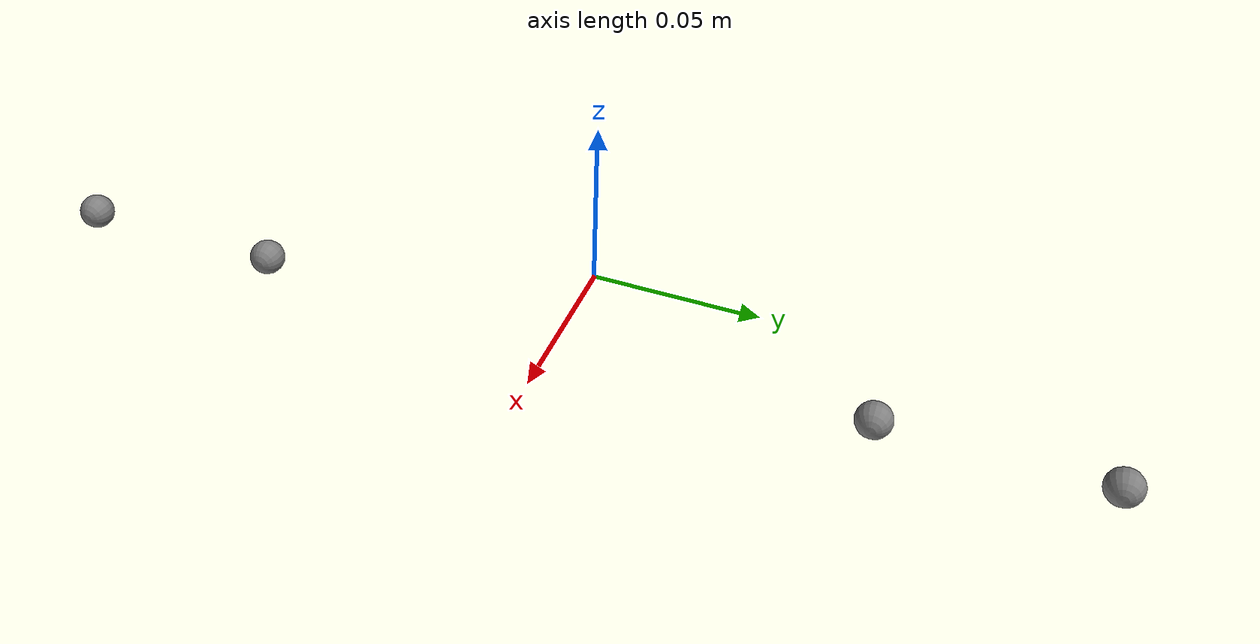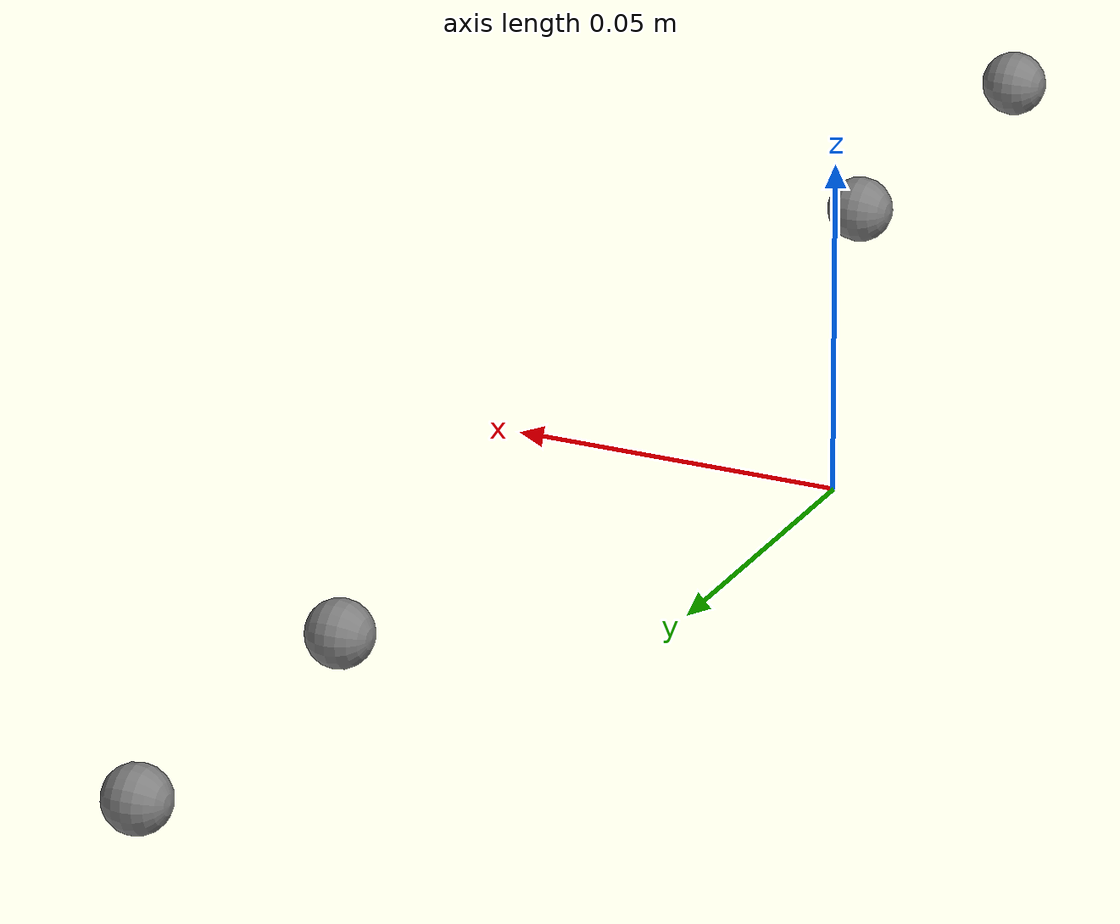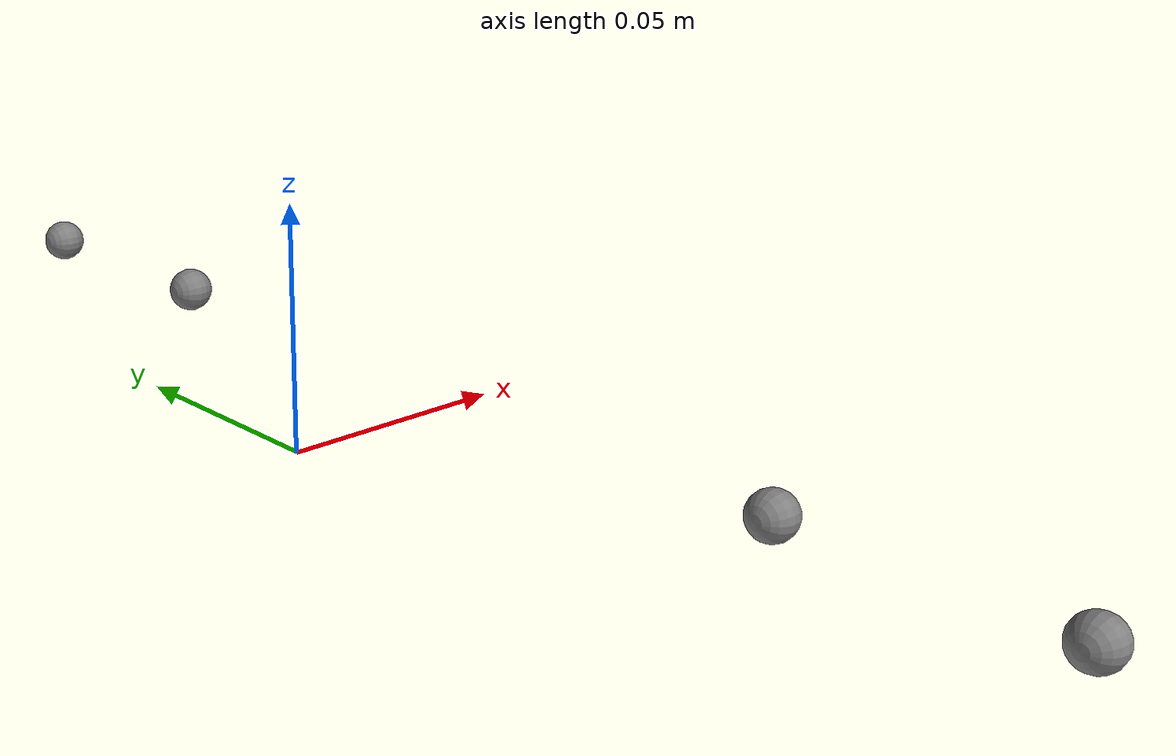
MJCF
<mujoco model="unitree_g1_29dof">
  <compiler angle="radian"/>
  <default>
    <default class="collision"/>
  </default>
  <worldbody>
    <body name="pelvis" pos="0 0 0.793" quat="1 0 0 0">
      <inertial pos="0 0 -0.07605" mass="3.813" fullinertia="0.0105489983 0.0093089 0.00791840168 0 2.09999645e-06 0"/>
      <freejoint/>
      <body name="left_hip_pitch_link" pos="0 0.064452 -0.1027" quat="0.707106781 -0.707106781 0 0">
        <inertial pos="0.002741 0.02606 0.047791" mass="1.35" fullinertia="0.00181100487 0.00128120214 0.00141930299 3.44002e-05 3.68000839e-05 -0.000171000371"/>
        <joint name="left_hip_pitch_joint" axis="0 0 1" range="-2.5307 2.8798"/>
        <body name="left_hip_roll_link" pos="0 0.030465 0.052" quat="0.541758629 0.541758629 0.454420057 0.454420057">
          <inertial pos="0.087934 -0.001045 0.029812" mass="1.52" fullinertia="0.0016595016 0.00241229823 0.00237730017 -1.84000462e-05 0.00039079999 -3.80016636e-06"/>
          <joint name="left_hip_roll_joint" axis="0 0 1" range="-0.5236 2.9671"/>
          <body name="left_hip_yaw_link" pos="0.12412 0 0.025001" quat="0.707106781 0 -0.707106781 0">
            <inertial pos="-0.057709 -0.010981 -0.15078" mass="1.702" fullinertia="0.00577739711 0.0076124014 0.00314900149 -0.000541101155 -0.00239480377 -0.00070720225"/>
            <joint name="left_hip_yaw_joint" axis="0 0 1" range="-2.7576 2.7576"/>
            <body name="left_knee_link" pos="-0.078273 0.0021489 -0.17734" quat="0.704404704 -0.704404704 0.0617576968 0.0617576968">
              <inertial pos="0.005457 0.12074 0.003964" mass="1.932" fullinertia="0.0113289923 0.00151679526 0.0112769924 4.48974521e-05 4.81665062e-05 0.000714600249"/>
              <joint name="left_knee_joint" axis="0 0 1" range="-0.087267 2.8798"/>
              <body name="left_ankle_pitch_link" pos="0 0.30001 -9.4445e-05" quat="1 0 0 0">
                <inertial pos="-0.007269 -0.011137 1.73472348e-18" mass="0.074" fullinertia="8.39999715e-06 1.26000028e-05 1.89e-05 2.89999453e-06 -5.33097347e-22 5.29511238e-22"/>
                <joint name="left_ankle_pitch_joint" axis="0 0 1" range="-0.87267 0.5236"/>
                <body name="left_ankle_roll_link" pos="0 0.017558 -3.46944695e-18" quat="0.5 0.5 0.5 0.5">
                  <inertial pos="0.016425 0 0.026505" mass="0.608" fullinertia="0.00166670122 0.00161610011 0.000223099671 1.00002017e-07 -8.91010117e-05 1.99999908e-07"/>
                  <joint name="left_ankle_roll_joint" axis="0 0 1" range="-0.2618 0.2618"/>
                  <geom class="collision" fromto="0.03 -0.03 -0.05 0.03 -0.03 0.12" size="0.005"/>
                  <geom class="collision" fromto="0.03 0.03 -0.05 0.03 0.03 0.12" size="0.005"/>
                </body>
              </body>
            </body>
          </body>
        </body>
      </body>
      <body name="right_hip_pitch_link" pos="0 -0.064452 -0.1027" quat="0.707106781 -0.707106781 0 0">
        <inertial pos="0.002741 0.02606 -0.047791" mass="1.35" fullinertia="0.00181100487 0.00128120214 0.00141930299 3.44002e-05 -3.68000839e-05 0.000171000371"/>
        <joint name="right_hip_pitch_joint" axis="0 0 1" range="-2.5307 2.8798"/>
        <body name="right_hip_roll_link" pos="0 0.030465 -0.052" quat="0.541758629 0.541758629 0.454420057 0.454420057">
          <inertial pos="0.087934 0.001045 0.029812" mass="1.52" fullinertia="0.0016595016 0.00241229823 0.00237730017 1.84000462e-05 0.00039079999 3.80016636e-06"/>
          <joint name="right_hip_roll_joint" axis="0 0 1" range="-2.9671 0.5236"/>
          <body name="right_hip_yaw_link" pos="0.12412 0 0.025001" quat="0.707106781 0 -0.707106781 0">
            <inertial pos="-0.057709 0.010981 -0.15078" mass="1.702" fullinertia="0.00577739711 0.0076124014 0.00314900149 0.000541101155 -0.00239480377 0.00070720225"/>
            <joint name="right_hip_yaw_joint" axis="0 0 1" range="-2.7576 2.7576"/>
            <body name="right_knee_link" pos="-0.078273 -0.0021489 -0.17734" quat="0.704404704 -0.704404704 0.0617576968 0.0617576968">
              <inertial pos="0.005457 0.12074 -0.003964" mass="1.932" fullinertia="0.0113290107 0.00151679887 0.0112770104 -4.48973458e-05 -4.82389719e-05 -0.000714601046"/>
              <joint name="right_knee_joint" axis="0 0 1" range="-0.087267 2.8798"/>
              <body name="right_ankle_pitch_link" pos="0 0.30001 9.4445e-05" quat="1 0 0 0">
                <inertial pos="-0.007269 -0.011137 1.73472348e-18" mass="0.074" fullinertia="8.39999715e-06 1.26000028e-05 1.89e-05 2.89999453e-06 -5.33097347e-22 5.29511238e-22"/>
                <joint name="right_ankle_pitch_joint" axis="0 0 1" range="-0.87267 0.5236"/>
                <body name="right_ankle_roll_link" pos="0 0.017558 -3.46944695e-18" quat="0.5 0.5 0.5 0.5">
                  <inertial pos="0.016425 0 0.026505" mass="0.608" fullinertia="0.00166670122 0.00161610011 0.000223099671 -1.00002017e-07 -8.91010117e-05 -1.99999908e-07"/>
                  <joint name="right_ankle_roll_joint" axis="0 0 1" range="-0.2618 0.2618"/>
                  <geom class="collision" fromto="0.03 -0.03 -0.05 0.03 -0.03 0.12" size="0.005"/>
                  <geom class="collision" fromto="0.03 0.03 -0.05 0.03 0.03 0.12" size="0.005"/>
                </body>
              </body>
            </body>
          </body>
        </body>
      </body>
      <body name="waist_yaw_link" pos="0 0 0" quat="1 0 0 0">
        <inertial pos="0.003494 0.000233 0.018034" mass="0.214" fullinertia="0.000106729754 0.000104219847 0.000162500399 2.70281413e-06 -7.63111886e-06 -2.00997774e-07"/>
        <joint name="waist_yaw_joint" axis="0 0 1" range="-2.618 2.618"/>
        <body name="waist_roll_link" pos="-0.0039635 0 0.044" quat="0.707106781 0 0.707106781 0">
          <inertial pos="0 2.3e-05 0" mass="0.086" fullinertia="8.245e-06 6.339e-06 7.079e-06 0 -1.83072781e-22 0"/>
          <joint name="waist_roll_joint" axis="0 0 1" range="-0.52 0.52"/>
          <body name="torso_link" pos="0 0 0" quat="0.5 -0.5 -0.5 -0.5">
            <inertial pos="0.00203158 -0.184568 0.000339683" mass="7.818" fullinertia="0.121698443 0.0275219757 0.109825081 0.00374228948 3.11092566e-05 1.55074339e-05"/>
            <joint name="waist_pitch_joint" axis="0 0 1" range="-0.52 0.52"/>
            <body name="left_shoulder_pitch_link" pos="0.0039563 -0.24778 0.10022" quat="0.99026414 0.13920102 9.86868139e-05 1.3872202e-05">
              <inertial pos="0 0.011628 0.035892" mass="0.718" fullinertia="0.000429099685 0.000423000059 0.000453000256 -6.39978351e-06 -9.20001783e-06 -2.26001111e-05"/>
              <joint name="left_shoulder_pitch_joint" axis="0 0 1" range="-3.0892 2.6704"/>
              <body name="left_shoulder_roll_link" pos="0 0.013831 0.038" quat="0.564720125 0.425548094 0.564720125 0.425548094">
                <inertial pos="0.063243 0.00727 -0.000227" mass="0.643" fullinertia="0.000389399553 0.000691199832 0.000617699615 5.30032372e-06 -8.69999998e-06 -1.00008224e-06"/>
                <joint name="left_shoulder_roll_joint" axis="0 0 1" range="-1.5882 2.2515"/>
                <body name="left_shoulder_yaw_link" pos="0.1032 0.00624 -2.08166817e-17" quat="0.707106781 0 -0.707106781 0">
                  <inertial pos="0.010773 -0.002949 -0.072009" mass="0.734" fullinertia="0.000998803887 0.00106049671 0.000435400401 7.89971003e-06 0.000141200796 -2.85999284e-05"/>
                  <joint name="left_shoulder_yaw_joint" axis="0 0 1" range="-2.618 2.618"/>
                  <body name="left_elbow_link" pos="0.015783 0 -0.080518" quat="0.707106781 -0.707106781 0 0">
                    <inertial pos="0.064956 0.010062 0.004454" mass="0.6" fullinertia="0.000289099621 0.000419700405 0.000415199974 -1.7200109e-05 6.53001523e-05 5.60008769e-06"/>
                    <joint name="left_elbow_joint" axis="0 0 1" range="-1.0472 2.0944"/>
                    <body name="left_wrist_roll_link" pos="0.1 0.01 0.00188791" quat="0.5 0.5 0.5 0.5">
                      <inertial pos="-0.0166433536 0.0411473531 0.0391169174" mass="0.824071" fullinertia="0.00229913482 0.00174245645 0.00118083738 -0.000139552412 -0.000160561434 -0.000588482481"/>
                      <joint name="left_wrist_roll_joint" axis="0 0 1" range="-1.97222 1.97222"/>
                    </body>
                  </body>
                </body>
              </body>
            </body>
            <body name="right_shoulder_pitch_link" pos="0.0039563 -0.24778 -0.10021" quat="0.99026414 -0.13920102 -9.86868139e-05 1.3872202e-05">
              <inertial pos="0 0.011628 -0.035892" mass="0.718" fullinertia="0.000429099685 0.000423000059 0.000453000256 -6.39978351e-06 9.20001783e-06 2.26001111e-05"/>
              <joint name="right_shoulder_pitch_joint" axis="0 0 1" range="-3.0892 2.6704"/>
              <body name="right_shoulder_roll_link" pos="0 0.013831 -0.038" quat="0.425548094 0.564720125 0.425548094 0.564720125">
                <inertial pos="0.063243 -0.00727 -0.000227" mass="0.643" fullinertia="0.000389399553 0.000691199832 0.000617699615 -5.30032372e-06 -8.69999998e-06 1.00008224e-06"/>
                <joint name="right_shoulder_roll_joint" axis="0 0 1" range="-2.2515 1.5882"/>
                <body name="right_shoulder_yaw_link" pos="0.1032 -0.00624 -2.08166817e-17" quat="0.707106781 0 -0.707106781 0">
                  <inertial pos="0.010773 0.002949 -0.072009" mass="0.734" fullinertia="0.000998803887 0.00106049671 0.000435400401 -7.89971003e-06 0.000141200796 2.85999284e-05"/>
                  <joint name="right_shoulder_yaw_joint" axis="0 0 1" range="-2.618 2.618"/>
                  <body name="right_elbow_link" pos="0.015783 0 -0.080518" quat="0.707106781 -0.707106781 0 0">
                    <inertial pos="0.064956 0.010062 -0.004454" mass="0.6" fullinertia="0.000289099621 0.000419700405 0.000415199974 -1.7200109e-05 -6.53001523e-05 -5.60008769e-06"/>
                    <joint name="right_elbow_joint" axis="0 0 1" range="-1.0472 2.0944"/>
                    <body name="right_wrist_roll_link" pos="0.1 0.01 -0.00188791" quat="0.5 0.5 0.5 0.5">
                      <inertial pos="0.0169556629 0.0422294518 0.0352159255" mass="0.824071" fullinertia="0.00204963002 0.0015689087 0.00119200236 0.000176421643 0.000141789835 -0.00047836843"/>
                      <joint name="right_wrist_roll_joint" axis="0 0 1" range="-1.97222 1.97222"/>
                    </body>
                  </body>
                </body>
              </body>
            </body>
          </body>
        </body>
      </body>
    </body>
  </worldbody>
</mujoco>
